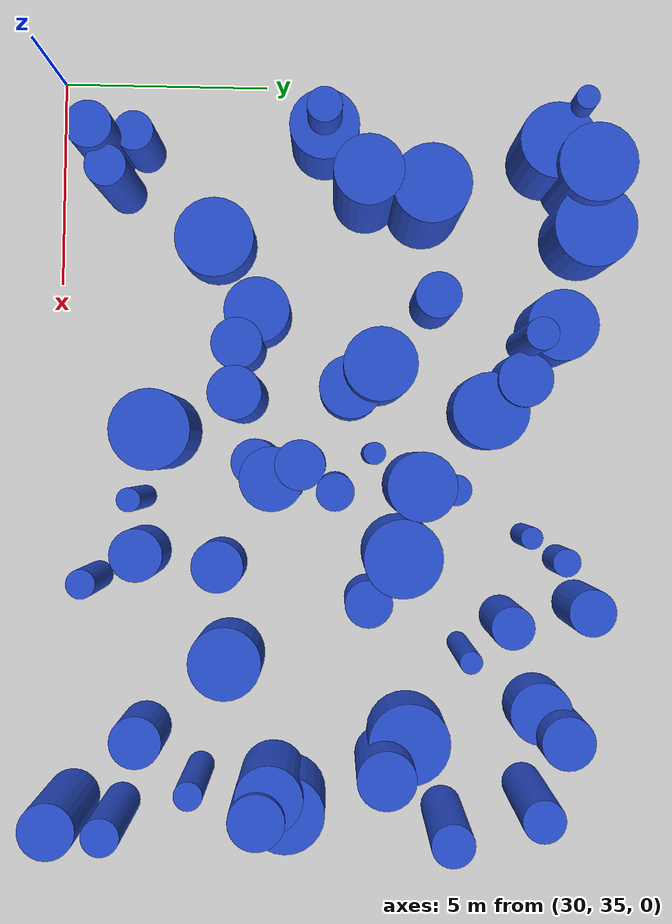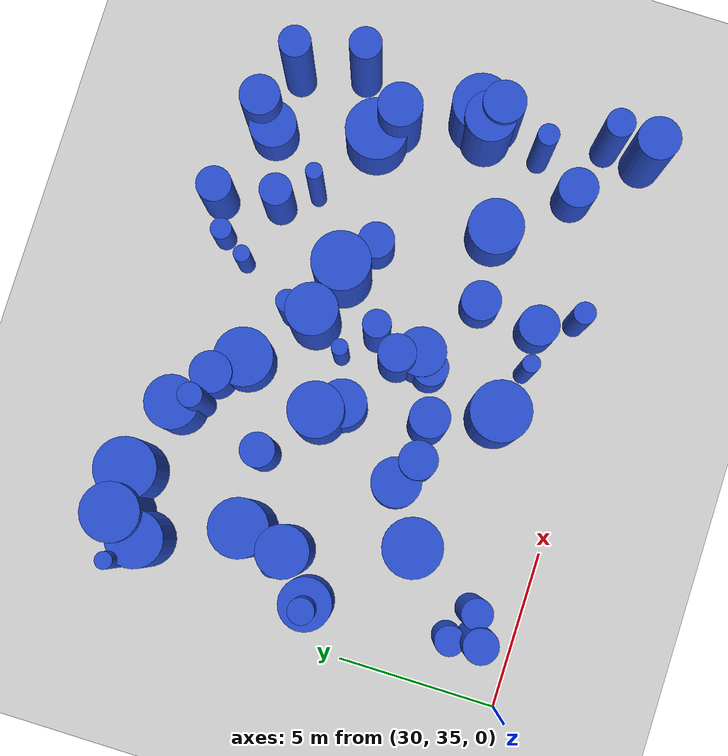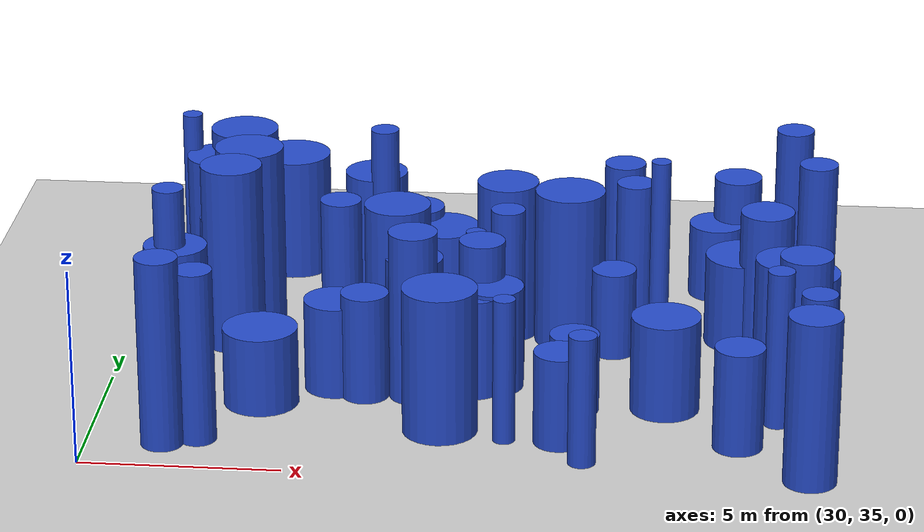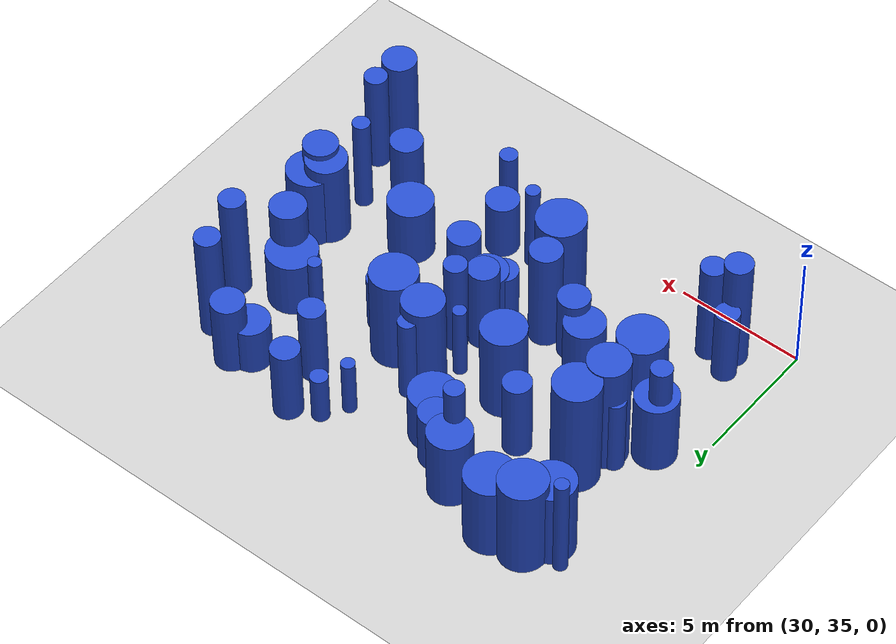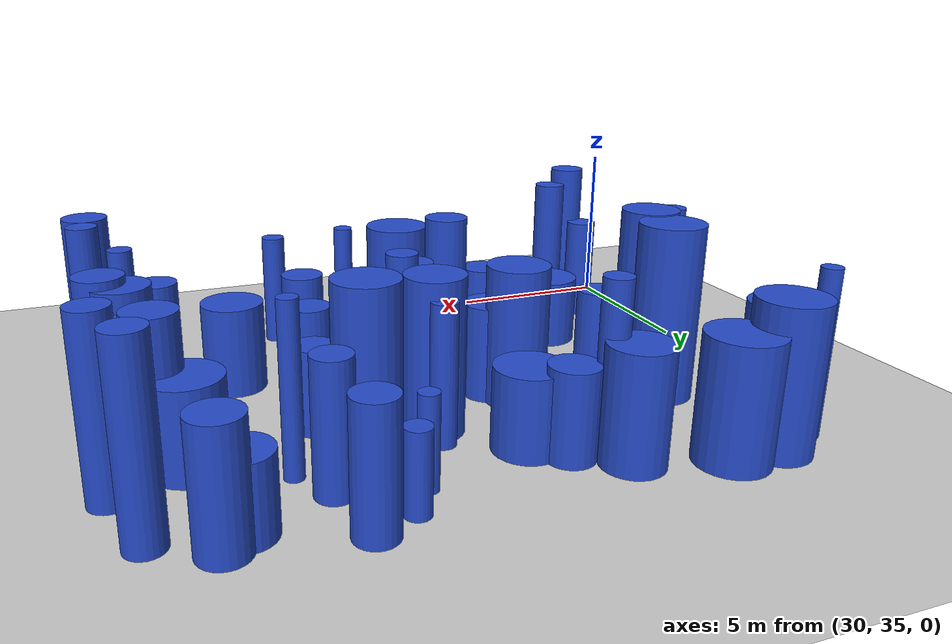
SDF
<sdf version="1.6">
 <world name="default">
  <model name="ground_plane">
   <static>1</static>
   <link name="link">
    <collision name="collision">
     <geometry><plane><normal>0 0 1</normal><size>100 100</size></plane></geometry>
     <surface><friction><ode><mu>100</mu><mu2>50</mu2></ode></friction></surface>
    </collision>
    <visual name="visual">
     <cast_shadows>0</cast_shadows>
     <geometry><plane><normal>0 0 1</normal><size>100 100</size></plane></geometry>
     <material>
      <script><uri>file://media/materials/scripts/gazebo.material</uri><name>Gazebo/Grey</name></script>
     </material>
    </visual>
   </link>
  </model>
  <model name="23">
   <static>0</static>
   <link name="link">
    <inertial>
     <mass>2</mass>
     <inertia><ixx>3.04938</ixx><ixy>0</ixy><ixz>0</ixz><iyy>3.04938</iyy><iyz>0</iyz><izz>0.188982</izz></inertia>
    </inertial>
    <collision name="collision">
     <geometry><cylinder><length>4.21062</length><radius>0.434721</radius></cylinder></geometry>
     <surface><contact><collide_without_contact>1</collide_without_contact></contact></surface>
    </collision>
    <visual name="visual">
     <geometry><cylinder><length>4.21062</length><radius>0.434721</radius></cylinder></geometry>
     <material>
      <script><uri>file://media/materials/scripts/gazebo.material</uri><name>Gazebo/Blue</name></script>
     </material>
    </visual>
    <gravity>0</gravity>
   </link>
   <pose>39.9557 41.882 2.10531 0 -0 0</pose>
  </model>
  <model name="40">
   <static>0</static>
   <link name="link">
    <inertial>
     <mass>2</mass>
     <inertia><ixx>2.09955</ixx><ixy>0</ixy><ixz>0</ixz><iyy>2.09955</iyy><iyz>0</iyz><izz>0.83864</izz></inertia>
    </inertial>
    <collision name="collision">
     <geometry><cylinder><length>3.17512</length><radius>0.915773</radius></cylinder></geometry>
     <surface><contact><collide_without_contact>1</collide_without_contact></contact></surface>
    </collision>
    <visual name="visual">
     <geometry><cylinder><length>3.17512</length><radius>0.915773</radius></cylinder></geometry>
     <material>
      <script><uri>file://media/materials/scripts/gazebo.material</uri><name>Gazebo/Blue</name></script>
     </material>
    </visual>
    <gravity>0</gravity>
   </link>
   <pose>47.4771 40.8684 1.58756 0 -0 0</pose>
  </model>
  <model name="57">
   <static>0</static>
   <link name="link">
    <inertial>
     <mass>2</mass>
     <inertia><ixx>3.68836</ixx><ixy>0</ixy><ixz>0</ixz><iyy>3.68836</iyy><iyz>0</iyz><izz>0.162309</izz></inertia>
    </inertial>
    <collision name="collision">
     <geometry><cylinder><length>4.65223</length><radius>0.402876</radius></cylinder></geometry>
     <surface><contact><collide_without_contact>1</collide_without_contact></contact></surface>
    </collision>
    <visual name="visual">
     <geometry><cylinder><length>4.65223</length><radius>0.402876</radius></cylinder></geometry>
     <material>
      <script><uri>file://media/materials/scripts/gazebo.material</uri><name>Gazebo/Blue</name></script>
     </material>
    </visual>
    <gravity>0</gravity>
   </link>
   <pose>31.3037 41.4852 2.32611 0 -0 0</pose>
  </model>
  <model name="70">
   <static>0</static>
   <link name="link">
    <inertial>
     <mass>2</mass>
     <inertia><ixx>4.21383</ixx><ixy>0</ixy><ixz>0</ixz><iyy>4.21383</iyy><iyz>0</iyz><izz>0.281293</izz></inertia>
    </inertial>
    <collision name="collision">
     <geometry><cylinder><length>4.94359</length><radius>0.53037</radius></cylinder></geometry>
     <surface><contact><collide_without_contact>1</collide_without_contact></contact></surface>
    </collision>
    <visual name="visual">
     <geometry><cylinder><length>4.94359</length><radius>0.53037</radius></cylinder></geometry>
     <material>
      <script><uri>file://media/materials/scripts/gazebo.material</uri><name>Gazebo/Blue</name></script>
     </material>
    </visual>
    <gravity>0</gravity>
   </link>
   <pose>31.894 36.255 2.4718 0 -0 0</pose>
  </model>
  <model name="72">
   <static>0</static>
   <link name="link">
    <inertial>
     <mass>2</mass>
     <inertia><ixx>1.94318</ixx><ixy>0</ixy><ixz>0</ixz><iyy>1.94318</iyy><iyz>0</iyz><izz>0.697491</izz></inertia>
    </inertial>
    <collision name="collision">
     <geometry><cylinder><length>3.093</length><radius>0.835159</radius></cylinder></geometry>
     <surface><contact><collide_without_contact>1</collide_without_contact></contact></surface>
    </collision>
    <visual name="visual">
     <geometry><cylinder><length>3.093</length><radius>0.835159</radius></cylinder></geometry>
     <material>
      <script><uri>file://media/materials/scripts/gazebo.material</uri><name>Gazebo/Blue</name></script>
     </material>
    </visual>
    <gravity>0</gravity>
   </link>
   <pose>36.0041 47.1064 1.5465 0 -0 0</pose>
  </model>
  <model name="84">
   <static>0</static>
   <link name="link">
    <inertial>
     <mass>2</mass>
     <inertia>
      <ixx>0.948793</ixx>
      <ixy>0</ixy>
      <ixz>0</ixz>
      <iyy>0.948793</iyy>
      <iyz>0</iyz>
      <izz>0.560921</izz>
     </inertia>
    </inertial>
    <collision name="collision">
     <geometry><cylinder><length>2.0025</length><radius>0.748947</radius></cylinder></geometry>
     <surface><contact><collide_without_contact>1</collide_without_contact></contact></surface>
    </collision>
    <visual name="visual">
     <geometry><cylinder><length>2.0025</length><radius>0.748947</radius></cylinder></geometry>
     <material>
      <script><uri>file://media/materials/scripts/gazebo.material</uri><name>Gazebo/Blue</name></script>
     </material>
    </visual>
    <gravity>0</gravity>
   </link>
   <pose>45.1969 46.9008 1.00125 0 -0 0</pose>
  </model>
  <model name="89">
   <static>0</static>
   <link name="link">
    <inertial>
     <mass>2</mass>
     <inertia><ixx>3.50767</ixx><ixy>0</ixy><ixz>0</ixz><iyy>3.50767</iyy><iyz>0</iyz><izz>0.380322</izz></inertia>
    </inertial>
    <collision name="collision">
     <geometry><cylinder><length>4.46151</length><radius>0.616703</radius></cylinder></geometry>
     <surface><contact><collide_without_contact>1</collide_without_contact></contact></surface>
    </collision>
    <visual name="visual">
     <geometry><cylinder><length>4.46151</length><radius>0.616703</radius></cylinder></geometry>
     <material>
      <script><uri>file://media/materials/scripts/gazebo.material</uri><name>Gazebo/Blue</name></script>
     </material>
    </visual>
    <gravity>0</gravity>
   </link>
   <pose>37.7575 39.5745 2.23075 0 -0 0</pose>
  </model>
  <model name="96">
   <static>0</static>
   <link name="link">
    <inertial>
     <mass>2</mass>
     <inertia>
      <ixx>0.805174</ixx>
      <ixy>0</ixy>
      <ixz>0</ixz>
      <iyy>0.805174</iyy>
      <iyz>0</iyz>
      <izz>0.112576</izz>
     </inertia>
    </inertial>
    <collision name="collision">
     <geometry><cylinder><length>2.11975</length><radius>0.335523</radius></cylinder></geometry>
     <surface><contact><collide_without_contact>1</collide_without_contact></contact></surface>
    </collision>
    <visual name="visual">
     <geometry><cylinder><length>2.11975</length><radius>0.335523</radius></cylinder></geometry>
     <material>
      <script><uri>file://media/materials/scripts/gazebo.material</uri><name>Gazebo/Blue</name></script>
     </material>
    </visual>
    <gravity>0</gravity>
   </link>
   <pose>41.5792 47.4205 1.05987 0 -0 0</pose>
  </model>
  <model name="118">
   <static>0</static>
   <link name="link">
    <inertial>
     <mass>2</mass>
     <inertia>
      <ixx>2.41426</ixx>
      <ixy>0</ixy>
      <ixz>0</ixz>
      <iyy>2.41426</iyy>
      <iyz>0</iyz>
      <izz>0.0775708</izz>
     </inertia>
    </inertial>
    <collision name="collision">
     <geometry><cylinder><length>3.77529</length><radius>0.278515</radius></cylinder></geometry>
     <surface><contact><collide_without_contact>1</collide_without_contact></contact></surface>
    </collision>
    <visual name="visual">
     <geometry><cylinder><length>3.77529</length><radius>0.278515</radius></cylinder></geometry>
     <material>
      <script><uri>file://media/materials/scripts/gazebo.material</uri><name>Gazebo/Blue</name></script>
     </material>
    </visual>
    <gravity>0</gravity>
   </link>
   <pose>40.2269 37.1675 1.88765 0 -0 0</pose>
  </model>
  <model name="134">
   <static>0</static>
   <link name="link">
    <inertial>
     <mass>2</mass>
     <inertia><ixx>2.42735</ixx><ixy>0</ixy><ixz>0</ixz><iyy>2.42735</iyy><iyz>0</iyz><izz>0.342951</izz></inertia>
    </inertial>
    <collision name="collision">
     <geometry><cylinder><length>3.67903</length><radius>0.58562</radius></cylinder></geometry>
     <surface><contact><collide_without_contact>1</collide_without_contact></contact></surface>
    </collision>
    <visual name="visual">
     <geometry><cylinder><length>3.67903</length><radius>0.58562</radius></cylinder></geometry>
     <material>
      <script><uri>file://media/materials/scripts/gazebo.material</uri><name>Gazebo/Blue</name></script>
     </material>
    </visual>
    <gravity>0</gravity>
   </link>
   <pose>39.3621 41.0642 1.83951 0 -0 0</pose>
  </model>
  <model name="136">
   <static>0</static>
   <link name="link">
    <inertial>
     <mass>2</mass>
     <inertia><ixx>4.39167</ixx><ixy>0</ixy><ixz>0</ixz><iyy>4.39167</iyy><iyz>0</iyz><izz>0.6339</izz></inertia>
    </inertial>
    <collision name="collision">
     <geometry><cylinder><length>4.94452</length><radius>0.796178</radius></cylinder></geometry>
     <surface><contact><collide_without_contact>1</collide_without_contact></contact></surface>
    </collision>
    <visual name="visual">
     <geometry><cylinder><length>4.94452</length><radius>0.796178</radius></cylinder></geometry>
     <material>
      <script><uri>file://media/materials/scripts/gazebo.material</uri><name>Gazebo/Blue</name></script>
     </material>
    </visual>
    <gravity>0</gravity>
   </link>
   <pose>32.7787 42.5001 2.47226 0 -0 0</pose>
  </model>
  <model name="139">
   <static>0</static>
   <link name="link">
    <inertial>
     <mass>2</mass>
     <inertia><ixx>1.8432</ixx><ixy>0</ixy><ixz>0</ixz><iyy>1.8432</iyy><iyz>0</iyz><izz>0.213005</izz></inertia>
    </inertial>
    <collision name="collision">
     <geometry><cylinder><length>3.22803</length><radius>0.461524</radius></cylinder></geometry>
     <surface><contact><collide_without_contact>1</collide_without_contact></contact></surface>
    </collision>
    <visual name="visual">
     <geometry><cylinder><length>3.22803</length><radius>0.461524</radius></cylinder></geometry>
     <material>
      <script><uri>file://media/materials/scripts/gazebo.material</uri><name>Gazebo/Blue</name></script>
     </material>
    </visual>
    <gravity>0</gravity>
   </link>
   <pose>31.7018 37.0647 1.61402 0 -0 0</pose>
  </model>
  <model name="157">
   <static>0</static>
   <link name="link">
    <inertial>
     <mass>2</mass>
     <inertia><ixx>1.74429</ixx><ixy>0</ixy><ixz>0</ixz><iyy>1.74429</iyy><iyz>0</iyz><izz>0.06803</izz></inertia>
    </inertial>
    <collision name="collision">
     <geometry><cylinder><length>3.20338</length><radius>0.260826</radius></cylinder></geometry>
     <surface><contact><collide_without_contact>1</collide_without_contact></contact></surface>
    </collision>
    <visual name="visual">
     <geometry><cylinder><length>3.20338</length><radius>0.260826</radius></cylinder></geometry>
     <material>
      <script><uri>file://media/materials/scripts/gazebo.material</uri><name>Gazebo/Blue</name></script>
     </material>
    </visual>
    <gravity>0</gravity>
   </link>
   <pose>39.0614 42.7773 1.60169 0 -0 0</pose>
  </model>
  <model name="160">
   <static>0</static>
   <link name="link">
    <inertial>
     <mass>2</mass>
     <inertia>
      <ixx>3.30693</ixx>
      <ixy>0</ixy>
      <ixz>0</ixz>
      <iyy>3.30693</iyy>
      <iyz>0</iyz>
      <izz>0.0667191</izz>
     </inertia>
    </inertial>
    <collision name="collision">
     <geometry><cylinder><length>4.43187</length><radius>0.2583</radius></cylinder></geometry>
     <surface><contact><collide_without_contact>1</collide_without_contact></contact></surface>
    </collision>
    <visual name="visual">
     <geometry><cylinder><length>4.43187</length><radius>0.2583</radius></cylinder></geometry>
     <material>
      <script><uri>file://media/materials/scripts/gazebo.material</uri><name>Gazebo/Blue</name></script>
     </material>
    </visual>
    <gravity>0</gravity>
   </link>
   <pose>43.7187 45.0025 2.21593 0 -0 0</pose>
  </model>
  <model name="177">
   <static>0</static>
   <link name="link">
    <inertial>
     <mass>2</mass>
     <inertia><ixx>3.68104</ixx><ixy>0</ixy><ixz>0</ixz><iyy>3.68104</iyy><iyz>0</iyz><izz>0.250635</izz></inertia>
    </inertial>
    <collision name="collision">
     <geometry><cylinder><length>4.61891</length><radius>0.500634</radius></cylinder></geometry>
     <surface><contact><collide_without_contact>1</collide_without_contact></contact></surface>
    </collision>
    <visual name="visual">
     <geometry><cylinder><length>4.61891</length><radius>0.500634</radius></cylinder></geometry>
     <material>
      <script><uri>file://media/materials/scripts/gazebo.material</uri><name>Gazebo/Blue</name></script>
     </material>
    </visual>
    <gravity>0</gravity>
   </link>
   <pose>47.8007 44.6703 2.30945 0 -0 0</pose>
  </model>
  <model name="183">
   <static>0</static>
   <link name="link">
    <inertial>
     <mass>2</mass>
     <inertia><ixx>1.14779</ixx><ixy>0</ixy><ixz>0</ixz><iyy>1.14779</iyy><iyz>0</iyz><izz>0.902778</izz></inertia>
    </inertial>
    <collision name="collision">
     <geometry><cylinder><length>2.04411</length><radius>0.950146</radius></cylinder></geometry>
     <surface><contact><collide_without_contact>1</collide_without_contact></contact></surface>
    </collision>
    <visual name="visual">
     <geometry><cylinder><length>2.04411</length><radius>0.950146</radius></cylinder></geometry>
     <material>
      <script><uri>file://media/materials/scripts/gazebo.material</uri><name>Gazebo/Blue</name></script>
     </material>
    </visual>
    <gravity>0</gravity>
   </link>
   <pose>33.9788 38.8893 1.02206 0 -0 0</pose>
  </model>
  <model name="202">
   <static>0</static>
   <link name="link">
    <inertial>
     <mass>2</mass>
     <inertia><ixx>1.27336</ixx><ixy>0</ixy><ixz>0</ixz><iyy>1.27336</iyy><iyz>0</iyz><izz>0.613847</izz></inertia>
    </inertial>
    <collision name="collision">
     <geometry><cylinder><length>2.40804</length><radius>0.783484</radius></cylinder></geometry>
     <surface><contact><collide_without_contact>1</collide_without_contact></contact></surface>
    </collision>
    <visual name="visual">
     <geometry><cylinder><length>2.40804</length><radius>0.783484</radius></cylinder></geometry>
     <material>
      <script><uri>file://media/materials/scripts/gazebo.material</uri><name>Gazebo/Blue</name></script>
     </material>
    </visual>
    <gravity>0</gravity>
   </link>
   <pose>35.7251 39.9542 1.20402 0 -0 0</pose>
  </model>
  <model name="203">
   <static>0</static>
   <link name="link">
    <inertial>
     <mass>2</mass>
     <inertia><ixx>1.3183</ixx><ixy>0</ixy><ixz>0</ixz><iyy>1.3183</iyy><iyz>0</iyz><izz>0.315438</izz></inertia>
    </inertial>
    <collision name="collision">
     <geometry><cylinder><length>2.63884</length><radius>0.561639</radius></cylinder></geometry>
     <surface><contact><collide_without_contact>1</collide_without_contact></contact></surface>
    </collision>
    <visual name="visual">
     <geometry><cylinder><length>2.63884</length><radius>0.561639</radius></cylinder></geometry>
     <material>
      <script><uri>file://media/materials/scripts/gazebo.material</uri><name>Gazebo/Blue</name></script>
     </material>
    </visual>
    <gravity>0</gravity>
   </link>
   <pose>39.3262 39.9824 1.31942 0 -0 0</pose>
  </model>
  <model name="204">
   <static>0</static>
   <link name="link">
    <inertial>
     <mass>2</mass>
     <inertia><ixx>3.0511</ixx><ixy>0</ixy><ixz>0</ixz><iyy>3.0511</iyy><iyz>0</iyz><izz>0.822115</izz></inertia>
    </inertial>
    <collision name="collision">
     <geometry><cylinder><length>3.97998</length><radius>0.906706</radius></cylinder></geometry>
     <surface><contact><collide_without_contact>1</collide_without_contact></contact></surface>
    </collision>
    <visual name="visual">
     <geometry><cylinder><length>3.97998</length><radius>0.906706</radius></cylinder></geometry>
     <material>
      <script><uri>file://media/materials/scripts/gazebo.material</uri><name>Gazebo/Blue</name></script>
     </material>
    </visual>
    <gravity>0</gravity>
   </link>
   <pose>32.3537 47.7258 1.98999 0 -0 0</pose>
  </model>
  <model name="215">
   <static>0</static>
   <link name="link">
    <inertial>
     <mass>2</mass>
     <inertia><ixx>1.90914</ixx><ixy>0</ixy><ixz>0</ixz><iyy>1.90914</iyy><iyz>0</iyz><izz>0.304107</izz></inertia>
    </inertial>
    <collision name="collision">
     <geometry><cylinder><length>3.24692</length><radius>0.551459</radius></cylinder></geometry>
     <surface><contact><collide_without_contact>1</collide_without_contact></contact></surface>
    </collision>
    <visual name="visual">
     <geometry><cylinder><length>3.24692</length><radius>0.551459</radius></cylinder></geometry>
     <material>
      <script><uri>file://media/materials/scripts/gazebo.material</uri><name>Gazebo/Blue</name></script>
     </material>
    </visual>
    <gravity>0</gravity>
   </link>
   <pose>42.6657 47.8916 1.62346 0 -0 0</pose>
  </model>
  <model name="216">
   <static>0</static>
   <link name="link">
    <inertial>
     <mass>2</mass>
     <inertia><ixx>3.3517</ixx><ixy>0</ixy><ixz>0</ixz><iyy>3.3517</iyy><iyz>0</iyz><izz>0.0718464</izz></inertia>
    </inertial>
    <collision name="collision">
     <geometry><cylinder><length>4.46034</length><radius>0.268042</radius></cylinder></geometry>
     <surface><contact><collide_without_contact>1</collide_without_contact></contact></surface>
    </collision>
    <visual name="visual">
     <geometry><cylinder><length>4.46034</length><radius>0.268042</radius></cylinder></geometry>
     <material>
      <script><uri>file://media/materials/scripts/gazebo.material</uri><name>Gazebo/Blue</name></script>
     </material>
    </visual>
    <gravity>0</gravity>
   </link>
   <pose>30.9934 47.3868 2.23017 0 -0 0</pose>
  </model>
  <model name="232">
   <static>0</static>
   <link name="link">
    <inertial>
     <mass>2</mass>
     <inertia><ixx>3.28948</ixx><ixy>0</ixy><ixz>0</ixz><iyy>3.28948</iyy><iyz>0</iyz><izz>0.82004</izz></inertia>
    </inertial>
    <collision name="collision">
     <geometry><cylinder><length>4.15653</length><radius>0.905561</radius></cylinder></geometry>
     <surface><contact><collide_without_contact>1</collide_without_contact></contact></surface>
    </collision>
    <visual name="visual">
     <geometry><cylinder><length>4.15653</length><radius>0.905561</radius></cylinder></geometry>
     <material>
      <script><uri>file://media/materials/scripts/gazebo.material</uri><name>Gazebo/Blue</name></script>
     </material>
    </visual>
    <gravity>0</gravity>
   </link>
   <pose>41.4418 43.4553 2.07826 0 -0 0</pose>
  </model>
  <model name="239">
   <static>0</static>
   <link name="link">
    <inertial>
     <mass>2</mass>
     <inertia><ixx>1.18252</ixx><ixy>0</ixy><ixz>0</ixz><iyy>1.18252</iyy><iyz>0</iyz><izz>0.405692</izz></inertia>
    </inertial>
    <collision name="collision">
     <geometry><cylinder><length>2.42447</length><radius>0.63694</radius></cylinder></geometry>
     <surface><contact><collide_without_contact>1</collide_without_contact></contact></surface>
    </collision>
    <visual name="visual">
     <geometry><cylinder><length>2.42447</length><radius>0.63694</radius></cylinder></geometry>
     <material>
      <script><uri>file://media/materials/scripts/gazebo.material</uri><name>Gazebo/Blue</name></script>
     </material>
    </visual>
    <gravity>0</gravity>
   </link>
   <pose>41.5753 37.2017 1.21224 0 -0 0</pose>
  </model>
  <model name="248">
   <static>0</static>
   <link name="link">
    <inertial>
     <mass>2</mass>
     <inertia><ixx>2.07511</ixx><ixy>0</ixy><ixz>0</ixz><iyy>2.07511</iyy><iyz>0</iyz><izz>0.291432</izz></inertia>
    </inertial>
    <collision name="collision">
     <geometry><cylinder><length>3.40241</length><radius>0.539844</radius></cylinder></geometry>
     <surface><contact><collide_without_contact>1</collide_without_contact></contact></surface>
    </collision>
    <visual name="visual">
     <geometry><cylinder><length>3.40241</length><radius>0.539844</radius></cylinder></geometry>
     <material>
      <script><uri>file://media/materials/scripts/gazebo.material</uri><name>Gazebo/Blue</name></script>
     </material>
    </visual>
    <gravity>0</gravity>
   </link>
   <pose>35.3888 44.1889 1.7012 0 -0 0</pose>
  </model>
  <model name="256">
   <static>0</static>
   <link name="link">
    <inertial>
     <mass>2</mass>
     <inertia><ixx>3.28614</ixx><ixy>0</ixy><ixz>0</ixz><iyy>3.28614</iyy><iyz>0</iyz><izz>0.196575</izz></inertia>
    </inertial>
    <collision name="collision">
     <geometry><cylinder><length>4.37346</length><radius>0.443367</radius></cylinder></geometry>
     <surface><contact><collide_without_contact>1</collide_without_contact></contact></surface>
    </collision>
    <visual name="visual">
     <geometry><cylinder><length>4.37346</length><radius>0.443367</radius></cylinder></geometry>
     <material>
      <script><uri>file://media/materials/scripts/gazebo.material</uri><name>Gazebo/Blue</name></script>
     </material>
    </visual>
    <gravity>0</gravity>
   </link>
   <pose>47.814 36.7328 2.18673 0 -0 0</pose>
  </model>
  <model name="260">
   <static>0</static>
   <link name="link">
    <inertial>
     <mass>2</mass>
     <inertia><ixx>2.26148</ixx><ixy>0</ixy><ixz>0</ixz><iyy>2.26148</iyy><iyz>0</iyz><izz>0.926136</izz></inertia>
    </inertial>
    <collision name="collision">
     <geometry><cylinder><length>3.28489</length><radius>0.96236</radius></cylinder></geometry>
     <surface><contact><collide_without_contact>1</collide_without_contact></contact></surface>
    </collision>
    <visual name="visual">
     <geometry><cylinder><length>3.28489</length><radius>0.96236</radius></cylinder></geometry>
     <material>
      <script><uri>file://media/materials/scripts/gazebo.material</uri><name>Gazebo/Blue</name></script>
     </material>
    </visual>
    <gravity>0</gravity>
   </link>
   <pose>33.697 47.7966 1.64244 0 -0 0</pose>
  </model>
  <model name="265">
   <static>0</static>
   <link name="link">
    <inertial>
     <mass>2</mass>
     <inertia><ixx>1.2397</ixx><ixy>0</ixy><ixz>0</ixz><iyy>1.2397</iyy><iyz>0</iyz><izz>0.854126</izz></inertia>
    </inertial>
    <collision name="collision">
     <geometry><cylinder><length>2.20813</length><radius>0.924189</radius></cylinder></geometry>
     <surface><contact><collide_without_contact>1</collide_without_contact></contact></surface>
    </collision>
    <visual name="visual">
     <geometry><cylinder><length>2.20813</length><radius>0.924189</radius></cylinder></geometry>
     <material>
      <script><uri>file://media/materials/scripts/gazebo.material</uri><name>Gazebo/Blue</name></script>
     </material>
    </visual>
    <gravity>0</gravity>
   </link>
   <pose>37.9991 45.552 1.10407 0 -0 0</pose>
  </model>
  <model name="269">
   <static>0</static>
   <link name="link">
    <inertial>
     <mass>2</mass>
     <inertia><ixx>1.49927</ixx><ixy>0</ixy><ixz>0</ixz><iyy>1.49927</iyy><iyz>0</iyz><izz>0.368691</izz></inertia>
    </inertial>
    <collision name="collision">
     <geometry><cylinder><length>2.80883</length><radius>0.6072</radius></cylinder></geometry>
     <surface><contact><collide_without_contact>1</collide_without_contact></contact></surface>
    </collision>
    <visual name="visual">
     <geometry><cylinder><length>2.80883</length><radius>0.6072</radius></cylinder></geometry>
     <material>
      <script><uri>file://media/materials/scripts/gazebo.material</uri><name>Gazebo/Blue</name></script>
     </material>
    </visual>
    <gravity>0</gravity>
   </link>
   <pose>36.5415 39.5133 1.40441 0 -0 0</pose>
  </model>
  <model name="274">
   <static>0</static>
   <link name="link">
    <inertial>
     <mass>2</mass>
     <inertia><ixx>1.43922</ixx><ixy>0</ixy><ixz>0</ixz><iyy>1.43922</iyy><iyz>0</iyz><izz>0.764408</izz></inertia>
    </inertial>
    <collision name="collision">
     <geometry><cylinder><length>2.51835</length><radius>0.874304</radius></cylinder></geometry>
     <surface><contact><collide_without_contact>1</collide_without_contact></contact></surface>
    </collision>
    <visual name="visual">
     <geometry><cylinder><length>2.51835</length><radius>0.874304</radius></cylinder></geometry>
     <material>
      <script><uri>file://media/materials/scripts/gazebo.material</uri><name>Gazebo/Blue</name></script>
     </material>
    </visual>
    <gravity>0</gravity>
   </link>
   <pose>44.0894 39.3467 1.25918 0 -0 0</pose>
  </model>
  <model name="278">
   <static>0</static>
   <link name="link">
    <inertial>
     <mass>2</mass>
     <inertia><ixx>2.58097</ixx><ixy>0</ixy><ixz>0</ixz><iyy>2.58097</iyy><iyz>0</iyz><izz>0.634646</izz></inertia>
    </inertial>
    <collision name="collision">
     <geometry><cylinder><length>3.68536</length><radius>0.796647</radius></cylinder></geometry>
     <surface><contact><collide_without_contact>1</collide_without_contact></contact></surface>
    </collision>
    <visual name="visual">
     <geometry><cylinder><length>3.68536</length><radius>0.796647</radius></cylinder></geometry>
     <material>
      <script><uri>file://media/materials/scripts/gazebo.material</uri><name>Gazebo/Blue</name></script>
     </material>
    </visual>
    <gravity>0</gravity>
   </link>
   <pose>47.039 40.4858 1.84268 0 -0 0</pose>
  </model>
  <model name="284">
   <static>0</static>
   <link name="link">
    <inertial>
     <mass>2</mass>
     <inertia><ixx>2.06757</ixx><ixy>0</ixy><ixz>0</ixz><iyy>2.06757</iyy><iyz>0</iyz><izz>0.254674</izz></inertia>
    </inertial>
    <collision name="collision">
     <geometry><cylinder><length>3.41195</length><radius>0.504653</radius></cylinder></geometry>
     <surface><contact><collide_without_contact>1</collide_without_contact></contact></surface>
    </collision>
    <visual name="visual">
     <geometry><cylinder><length>3.41195</length><radius>0.504653</radius></cylinder></geometry>
     <material>
      <script><uri>file://media/materials/scripts/gazebo.material</uri><name>Gazebo/Blue</name></script>
     </material>
    </visual>
    <gravity>0</gravity>
   </link>
   <pose>43.0304 46.039 1.70598 0 -0 0</pose>
  </model>
  <model name="288">
   <static>0</static>
   <link name="link">
    <inertial>
     <mass>2</mass>
     <inertia><ixx>2.77257</ixx><ixy>0</ixy><ixz>0</ixz><iyy>2.77257</iyy><iyz>0</iyz><izz>0.445146</izz></inertia>
    </inertial>
    <collision name="collision">
     <geometry><cylinder><length>3.91152</length><radius>0.667193</radius></cylinder></geometry>
     <surface><contact><collide_without_contact>1</collide_without_contact></contact></surface>
    </collision>
    <visual name="visual">
     <geometry><cylinder><length>3.91152</length><radius>0.667193</radius></cylinder></geometry>
     <material>
      <script><uri>file://media/materials/scripts/gazebo.material</uri><name>Gazebo/Blue</name></script>
     </material>
    </visual>
    <gravity>0</gravity>
   </link>
   <pose>47.5178 40.2148 1.95576 0 -0 0</pose>
  </model>
  <model name="314">
   <static>0</static>
   <link name="link">
    <inertial>
     <mass>2</mass>
     <inertia><ixx>3.50749</ixx><ixy>0</ixy><ixz>0</ixz><iyy>3.50749</iyy><iyz>0</iyz><izz>0.142287</izz></inertia>
    </inertial>
    <collision name="collision">
     <geometry><cylinder><length>4.54071</length><radius>0.37721</radius></cylinder></geometry>
     <surface><contact><collide_without_contact>1</collide_without_contact></contact></surface>
    </collision>
    <visual name="visual">
     <geometry><cylinder><length>4.54071</length><radius>0.37721</radius></cylinder></geometry>
     <material>
      <script><uri>file://media/materials/scripts/gazebo.material</uri><name>Gazebo/Blue</name></script>
     </material>
    </visual>
    <gravity>0</gravity>
   </link>
   <pose>36.3108 46.4632 2.27036 0 -0 0</pose>
  </model>
  <model name="338">
   <static>0</static>
   <link name="link">
    <inertial>
     <mass>2</mass>
     <inertia><ixx>3.94655</ixx><ixy>0</ixy><ixz>0</ixz><iyy>3.94655</iyy><iyz>0</iyz><izz>0.240683</izz></inertia>
    </inertial>
    <collision name="collision">
     <geometry><cylinder><length>4.79138</length><radius>0.490594</radius></cylinder></geometry>
     <surface><contact><collide_without_contact>1</collide_without_contact></contact></surface>
    </collision>
    <visual name="visual">
     <geometry><cylinder><length>4.79138</length><radius>0.490594</radius></cylinder></geometry>
     <material>
      <script><uri>file://media/materials/scripts/gazebo.material</uri><name>Gazebo/Blue</name></script>
     </material>
    </visual>
    <gravity>0</gravity>
   </link>
   <pose>47.1844 46.6707 2.39569 0 -0 0</pose>
  </model>
  <model name="346">
   <static>0</static>
   <link name="link">
    <inertial>
     <mass>2</mass>
     <inertia><ixx>3.36226</ixx><ixy>0</ixy><ixz>0</ixz><iyy>3.36226</iyy><iyz>0</iyz><izz>0.434329</izz></inertia>
    </inertial>
    <collision name="collision">
     <geometry><cylinder><length>4.34402</length><radius>0.659036</radius></cylinder></geometry>
     <surface><contact><collide_without_contact>1</collide_without_contact></contact></surface>
    </collision>
    <visual name="visual">
     <geometry><cylinder><length>4.34402</length><radius>0.659036</radius></cylinder></geometry>
     <material>
      <script><uri>file://media/materials/scripts/gazebo.material</uri><name>Gazebo/Blue</name></script>
     </material>
    </visual>
    <gravity>0</gravity>
   </link>
   <pose>47.7167 35.5091 2.17201 0 -0 0</pose>
  </model>
  <model name="352">
   <static>0</static>
   <link name="link">
    <inertial>
     <mass>2</mass>
     <inertia><ixx>1.44984</ixx><ixy>0</ixy><ixz>0</ixz><iyy>1.44984</iyy><iyz>0</iyz><izz>0.951634</izz></inertia>
    </inertial>
    <collision name="collision">
     <geometry><cylinder><length>2.41747</length><radius>0.975517</radius></cylinder></geometry>
     <surface><contact><collide_without_contact>1</collide_without_contact></contact></surface>
    </collision>
    <visual name="visual">
     <geometry><cylinder><length>2.41747</length><radius>0.975517</radius></cylinder></geometry>
     <material>
      <script><uri>file://media/materials/scripts/gazebo.material</uri><name>Gazebo/Blue</name></script>
     </material>
    </visual>
    <gravity>0</gravity>
   </link>
   <pose>45.9249 43.752 1.20874 0 -0 0</pose>
  </model>
  <model name="359">
   <static>0</static>
   <link name="link">
    <inertial>
     <mass>2</mass>
     <inertia><ixx>2.85954</ixx><ixy>0</ixy><ixz>0</ixz><iyy>2.85954</iyy><iyz>0</iyz><izz>0.735454</izz></inertia>
    </inertial>
    <collision name="collision">
     <geometry><cylinder><length>3.86663</length><radius>0.857586</radius></cylinder></geometry>
     <surface><contact><collide_without_contact>1</collide_without_contact></contact></surface>
    </collision>
    <visual name="visual">
     <geometry><cylinder><length>3.86663</length><radius>0.857586</radius></cylinder></geometry>
     <material>
      <script><uri>file://media/materials/scripts/gazebo.material</uri><name>Gazebo/Blue</name></script>
     </material>
    </visual>
    <gravity>0</gravity>
   </link>
   <pose>37.0229 42.8678 1.93332 0 -0 0</pose>
  </model>
  <model name="363">
   <static>0</static>
   <link name="link">
    <inertial>
     <mass>2</mass>
     <inertia><ixx>2.41045</ixx><ixy>0</ixy><ixz>0</ixz><iyy>2.41045</iyy><iyz>0</iyz><izz>0.125659</izz></inertia>
    </inertial>
    <collision name="collision">
     <geometry><cylinder><length>3.75309</length><radius>0.354484</radius></cylinder></geometry>
     <surface><contact><collide_without_contact>1</collide_without_contact></contact></surface>
    </collision>
    <visual name="visual">
     <geometry><cylinder><length>3.75309</length><radius>0.354484</radius></cylinder></geometry>
     <material>
      <script><uri>file://media/materials/scripts/gazebo.material</uri><name>Gazebo/Blue</name></script>
     </material>
    </visual>
    <gravity>0</gravity>
   </link>
   <pose>39.8694 44.6485 1.87655 0 -0 0</pose>
  </model>
  <model name="367">
   <static>0</static>
   <link name="link">
    <inertial>
     <mass>2</mass>
     <inertia><ixx>1.05774</ixx><ixy>0</ixy><ixz>0</ixz><iyy>1.05774</iyy><iyz>0</iyz><izz>0.325385</izz></inertia>
    </inertial>
    <collision name="collision">
     <geometry><cylinder><length>2.31738</length><radius>0.570425</radius></cylinder></geometry>
     <surface><contact><collide_without_contact>1</collide_without_contact></contact></surface>
    </collision>
    <visual name="visual">
     <geometry><cylinder><length>2.31738</length><radius>0.570425</radius></cylinder></geometry>
     <material>
      <script><uri>file://media/materials/scripts/gazebo.material</uri><name>Gazebo/Blue</name></script>
     </material>
    </visual>
    <gravity>0</gravity>
   </link>
   <pose>42.6302 42.7311 1.15869 0 -0 0</pose>
  </model>
  <model name="369">
   <static>0</static>
   <link name="link">
    <inertial>
     <mass>2</mass>
     <inertia>
      <ixx>0.902158</ixx>
      <ixy>0</ixy>
      <ixz>0</ixz>
      <iyy>0.902158</iyy>
      <iyz>0</iyz>
      <izz>0.393691</izz>
     </inertia>
    </inertial>
    <collision name="collision">
     <geometry><cylinder><length>2.05715</length><radius>0.627448</radius></cylinder></geometry>
     <surface><contact><collide_without_contact>1</collide_without_contact></contact></surface>
    </collision>
    <visual name="visual">
     <geometry><cylinder><length>2.05715</length><radius>0.627448</radius></cylinder></geometry>
     <material>
      <script><uri>file://media/materials/scripts/gazebo.material</uri><name>Gazebo/Blue</name></script>
     </material>
    </visual>
    <gravity>0</gravity>
   </link>
   <pose>41.8325 39.1061 1.02858 0 -0 0</pose>
  </model>
  <model name="383">
   <static>0</static>
   <link name="link">
    <inertial>
     <mass>2</mass>
     <inertia><ixx>1.98371</ixx><ixy>0</ixy><ixz>0</ixz><iyy>1.98371</iyy><iyz>0</iyz><izz>0.148897</izz></inertia>
    </inertial>
    <collision name="collision">
     <geometry><cylinder><length>3.38461</length><radius>0.385871</radius></cylinder></geometry>
     <surface><contact><collide_without_contact>1</collide_without_contact></contact></surface>
    </collision>
    <visual name="visual">
     <geometry><cylinder><length>3.38461</length><radius>0.385871</radius></cylinder></geometry>
     <material>
      <script><uri>file://media/materials/scripts/gazebo.material</uri><name>Gazebo/Blue</name></script>
     </material>
    </visual>
    <gravity>0</gravity>
   </link>
   <pose>32.283 42.7253 1.69231 0 -0 0</pose>
  </model>
  <model name="384">
   <static>0</static>
   <link name="link">
    <inertial>
     <mass>2</mass>
     <inertia><ixx>1.47503</ixx><ixy>0</ixy><ixz>0</ixz><iyy>1.47503</iyy><iyz>0</iyz><izz>0.565306</izz></inertia>
    </inertial>
    <collision name="collision">
     <geometry><cylinder><length>2.67474</length><radius>0.751869</radius></cylinder></geometry>
     <surface><contact><collide_without_contact>1</collide_without_contact></contact></surface>
    </collision>
    <visual name="visual">
     <geometry><cylinder><length>2.67474</length><radius>0.751869</radius></cylinder></geometry>
     <material>
      <script><uri>file://media/materials/scripts/gazebo.material</uri><name>Gazebo/Blue</name></script>
     </material>
    </visual>
    <gravity>0</gravity>
   </link>
   <pose>37.5087 42.2116 1.33737 0 -0 0</pose>
  </model>
  <model name="388">
   <static>0</static>
   <link name="link">
    <inertial>
     <mass>2</mass>
     <inertia><ixx>2.87762</ixx><ixy>0</ixy><ixz>0</ixz><iyy>2.87762</iyy><iyz>0</iyz><izz>0.883431</izz></inertia>
    </inertial>
    <collision name="collision">
     <geometry><cylinder><length>3.82301</length><radius>0.93991</radius></cylinder></geometry>
     <surface><contact><collide_without_contact>1</collide_without_contact></contact></surface>
    </collision>
    <visual name="visual">
     <geometry><cylinder><length>3.82301</length><radius>0.93991</radius></cylinder></geometry>
     <material>
      <script><uri>file://media/materials/scripts/gazebo.material</uri><name>Gazebo/Blue</name></script>
     </material>
    </visual>
    <gravity>0</gravity>
   </link>
   <pose>38.608 37.6122 1.91151 0 -0 0</pose>
  </model>
  <model name="396">
   <static>0</static>
   <link name="link">
    <inertial>
     <mass>2</mass>
     <inertia><ixx>3.50081</ixx><ixy>0</ixy><ixz>0</ixz><iyy>3.50081</iyy><iyz>0</iyz><izz>0.225237</izz></inertia>
    </inertial>
    <collision name="collision">
     <geometry><cylinder><length>4.50878</length><radius>0.474592</radius></cylinder></geometry>
     <surface><contact><collide_without_contact>1</collide_without_contact></contact></surface>
    </collision>
    <visual name="visual">
     <geometry><cylinder><length>4.50878</length><radius>0.474592</radius></cylinder></geometry>
     <material>
      <script><uri>file://media/materials/scripts/gazebo.material</uri><name>Gazebo/Blue</name></script>
     </material>
    </visual>
    <gravity>0</gravity>
   </link>
   <pose>32.7208 36.5919 2.25439 0 -0 0</pose>
  </model>
  <model name="402">
   <static>0</static>
   <link name="link">
    <inertial>
     <mass>2</mass>
     <inertia><ixx>2.7201</ixx><ixy>0</ixy><ixz>0</ixz><iyy>2.7201</iyy><iyz>0</iyz><izz>0.478875</izz></inertia>
    </inertial>
    <collision name="collision">
     <geometry><cylinder><length>3.85798</length><radius>0.692008</radius></cylinder></geometry>
     <surface><contact><collide_without_contact>1</collide_without_contact></contact></surface>
    </collision>
    <visual name="visual">
     <geometry><cylinder><length>3.85798</length><radius>0.692008</radius></cylinder></geometry>
     <material>
      <script><uri>file://media/materials/scripts/gazebo.material</uri><name>Gazebo/Blue</name></script>
     </material>
    </visual>
    <gravity>0</gravity>
   </link>
   <pose>46.52 43.1842 1.92899 0 -0 0</pose>
  </model>
  <model name="417">
   <static>0</static>
   <link name="link">
    <inertial>
     <mass>2</mass>
     <inertia><ixx>1.83742</ixx><ixy>0</ixy><ixz>0</ixz><iyy>1.83742</iyy><iyz>0</iyz><izz>0.403452</izz></inertia>
    </inertial>
    <collision name="collision">
     <geometry><cylinder><length>3.13275</length><radius>0.635179</radius></cylinder></geometry>
     <surface><contact><collide_without_contact>1</collide_without_contact></contact></surface>
    </collision>
    <visual name="visual">
     <geometry><cylinder><length>3.13275</length><radius>0.635179</radius></cylinder></geometry>
     <material>
      <script><uri>file://media/materials/scripts/gazebo.material</uri><name>Gazebo/Blue</name></script>
     </material>
    </visual>
    <gravity>0</gravity>
   </link>
   <pose>45.7123 47.4122 1.56638 0 -0 0</pose>
  </model>
  <model name="432">
   <static>0</static>
   <link name="link">
    <inertial>
     <mass>2</mass>
     <inertia><ixx>2.88308</ixx><ixy>0</ixy><ixz>0</ixz><iyy>2.88308</iyy><iyz>0</iyz><izz>0.11268</izz></inertia>
    </inertial>
    <collision name="collision">
     <geometry><cylinder><length>4.1183</length><radius>0.335678</radius></cylinder></geometry>
     <surface><contact><collide_without_contact>1</collide_without_contact></contact></surface>
    </collision>
    <visual name="visual">
     <geometry><cylinder><length>4.1183</length><radius>0.335678</radius></cylinder></geometry>
     <material>
      <script><uri>file://media/materials/scripts/gazebo.material</uri><name>Gazebo/Blue</name></script>
     </material>
    </visual>
    <gravity>0</gravity>
   </link>
   <pose>46.8969 38.6747 2.05915 0 -0 0</pose>
  </model>
  <model name="438">
   <static>0</static>
   <link name="link">
    <inertial>
     <mass>2</mass>
     <inertia>
      <ixx>1.01256</ixx>
      <ixy>0</ixy>
      <ixz>0</ixz>
      <iyy>1.01256</iyy>
      <iyz>0</iyz>
      <izz>0.0698688</izz>
     </inertia>
    </inertial>
    <collision name="collision">
     <geometry><cylinder><length>2.42193</length><radius>0.264327</radius></cylinder></geometry>
     <surface><contact><collide_without_contact>1</collide_without_contact></contact></surface>
    </collision>
    <visual name="visual">
     <geometry><cylinder><length>2.42193</length><radius>0.264327</radius></cylinder></geometry>
     <material>
      <script><uri>file://media/materials/scripts/gazebo.material</uri><name>Gazebo/Blue</name></script>
     </material>
    </visual>
    <gravity>0</gravity>
   </link>
   <pose>40.994 46.5418 1.21097 0 -0 0</pose>
  </model>
  <model name="439">
   <static>0</static>
   <link name="link">
    <inertial>
     <mass>2</mass>
     <inertia><ixx>4.41093</ixx><ixy>0</ixy><ixz>0</ixz><iyy>4.41093</iyy><iyz>0</iyz><izz>0.797059</izz></inertia>
    </inertial>
    <collision name="collision">
     <geometry><cylinder><length>4.90657</length><radius>0.892782</radius></cylinder></geometry>
     <surface><contact><collide_without_contact>1</collide_without_contact></contact></surface>
    </collision>
    <visual name="visual">
     <geometry><cylinder><length>4.90657</length><radius>0.892782</radius></cylinder></geometry>
     <material>
      <script><uri>file://media/materials/scripts/gazebo.material</uri><name>Gazebo/Blue</name></script>
     </material>
    </visual>
    <gravity>0</gravity>
   </link>
   <pose>33.048 43.9091 2.45328 0 -0 0</pose>
  </model>
  <model name="442">
   <static>0</static>
   <link name="link">
    <inertial>
     <mass>2</mass>
     <inertia><ixx>1.9634</ixx><ixy>0</ixy><ixz>0</ixz><iyy>1.9634</iyy><iyz>0</iyz><izz>0.119455</izz></inertia>
    </inertial>
    <collision name="collision">
     <geometry><cylinder><length>3.37965</length><radius>0.345623</radius></cylinder></geometry>
     <surface><contact><collide_without_contact>1</collide_without_contact></contact></surface>
    </collision>
    <visual name="visual">
     <geometry><cylinder><length>3.37965</length><radius>0.345623</radius></cylinder></geometry>
     <material>
      <script><uri>file://media/materials/scripts/gazebo.material</uri><name>Gazebo/Blue</name></script>
     </material>
    </visual>
    <gravity>0</gravity>
   </link>
   <pose>42.2017 36.0542 1.68983 0 -0 0</pose>
  </model>
  <model name="456">
   <static>0</static>
   <link name="link">
    <inertial>
     <mass>2</mass>
     <inertia><ixx>1.54604</ixx><ixy>0</ixy><ixz>0</ixz><iyy>1.54604</iyy><iyz>0</iyz><izz>0.589506</izz></inertia>
    </inertial>
    <collision name="collision">
     <geometry><cylinder><length>2.74002</length><radius>0.767793</radius></cylinder></geometry>
     <surface><contact><collide_without_contact>1</collide_without_contact></contact></surface>
    </collision>
    <visual name="visual">
     <geometry><cylinder><length>2.74002</length><radius>0.767793</radius></cylinder></geometry>
     <material>
      <script><uri>file://media/materials/scripts/gazebo.material</uri><name>Gazebo/Blue</name></script>
     </material>
    </visual>
    <gravity>0</gravity>
   </link>
   <pose>39.7081 40.3875 1.37001 0 -0 0</pose>
  </model>
  <model name="458">
   <static>0</static>
   <link name="link">
    <inertial>
     <mass>2</mass>
     <inertia><ixx>1.9365</ixx><ixy>0</ixy><ixz>0</ixz><iyy>1.9365</iyy><iyz>0</iyz><izz>0.671905</izz></inertia>
    </inertial>
    <collision name="collision">
     <geometry><cylinder><length>3.09892</length><radius>0.819698</radius></cylinder></geometry>
     <surface><contact><collide_without_contact>1</collide_without_contact></contact></surface>
    </collision>
    <visual name="visual">
     <geometry><cylinder><length>3.09892</length><radius>0.819698</radius></cylinder></geometry>
     <material>
      <script><uri>file://media/materials/scripts/gazebo.material</uri><name>Gazebo/Blue</name></script>
     </material>
    </visual>
    <gravity>0</gravity>
   </link>
   <pose>31.4441 41.4799 1.54946 0 -0 0</pose>
  </model>
  <model name="464">
   <static>0</static>
   <link name="link">
    <inertial>
     <mass>2</mass>
     <inertia><ixx>3.25815</ixx><ixy>0</ixy><ixz>0</ixz><iyy>3.25815</iyy><iyz>0</iyz><izz>0.641724</izz></inertia>
    </inertial>
    <collision name="collision">
     <geometry><cylinder><length>4.19806</length><radius>0.801077</radius></cylinder></geometry>
     <surface><contact><collide_without_contact>1</collide_without_contact></contact></surface>
    </collision>
    <visual name="visual">
     <geometry><cylinder><length>4.19806</length><radius>0.801077</radius></cylinder></geometry>
     <material>
      <script><uri>file://media/materials/scripts/gazebo.material</uri><name>Gazebo/Blue</name></script>
     </material>
    </visual>
    <gravity>0</gravity>
   </link>
   <pose>39.8053 43.8537 2.09903 0 -0 0</pose>
  </model>
  <model name="471">
   <static>0</static>
   <link name="link">
    <inertial>
     <mass>2</mass>
     <inertia><ixx>1.38208</ixx><ixy>0</ixy><ixz>0</ixz><iyy>1.38208</iyy><iyz>0</iyz><izz>0.390513</izz></inertia>
    </inertial>
    <collision name="collision">
     <geometry><cylinder><length>2.66851</length><radius>0.624911</radius></cylinder></geometry>
     <surface><contact><collide_without_contact>1</collide_without_contact></contact></surface>
    </collision>
    <visual name="visual">
     <geometry><cylinder><length>2.66851</length><radius>0.624911</radius></cylinder></geometry>
     <material>
      <script><uri>file://media/materials/scripts/gazebo.material</uri><name>Gazebo/Blue</name></script>
     </material>
    </visual>
    <gravity>0</gravity>
   </link>
   <pose>45.9541 37.2949 1.33426 0 -0 0</pose>
  </model>
  <model name="486">
   <static>0</static>
   <link name="link">
    <inertial>
     <mass>2</mass>
     <inertia><ixx>1.20984</ixx><ixy>0</ixy><ixz>0</ixz><iyy>1.20984</iyy><iyz>0</iyz><izz>0.431879</izz></inertia>
    </inertial>
    <collision name="collision">
     <geometry><cylinder><length>2.44201</length><radius>0.657175</radius></cylinder></geometry>
     <surface><contact><collide_without_contact>1</collide_without_contact></contact></surface>
    </collision>
    <visual name="visual">
     <geometry><cylinder><length>2.44201</length><radius>0.657175</radius></cylinder></geometry>
     <material>
      <script><uri>file://media/materials/scripts/gazebo.material</uri><name>Gazebo/Blue</name></script>
     </material>
    </visual>
    <gravity>0</gravity>
   </link>
   <pose>37.2477 46.3363 1.22101 0 -0 0</pose>
  </model>
  <model name="498">
   <static>0</static>
   <link name="link">
    <inertial>
     <mass>2</mass>
     <inertia><ixx>2.43364</ixx><ixy>0</ixy><ixz>0</ixz><iyy>2.43364</iyy><iyz>0</iyz><izz>0.772947</izz></inertia>
    </inertial>
    <collision name="collision">
     <geometry><cylinder><length>3.50471</length><radius>0.879174</radius></cylinder></geometry>
     <surface><contact><collide_without_contact>1</collide_without_contact></contact></surface>
    </collision>
    <visual name="visual">
     <geometry><cylinder><length>3.50471</length><radius>0.879174</radius></cylinder></geometry>
     <material>
      <script><uri>file://media/materials/scripts/gazebo.material</uri><name>Gazebo/Blue</name></script>
     </material>
    </visual>
    <gravity>0</gravity>
   </link>
   <pose>31.7918 46.8629 1.75236 0 -0 0</pose>
  </model>
 </world>
</sdf>
